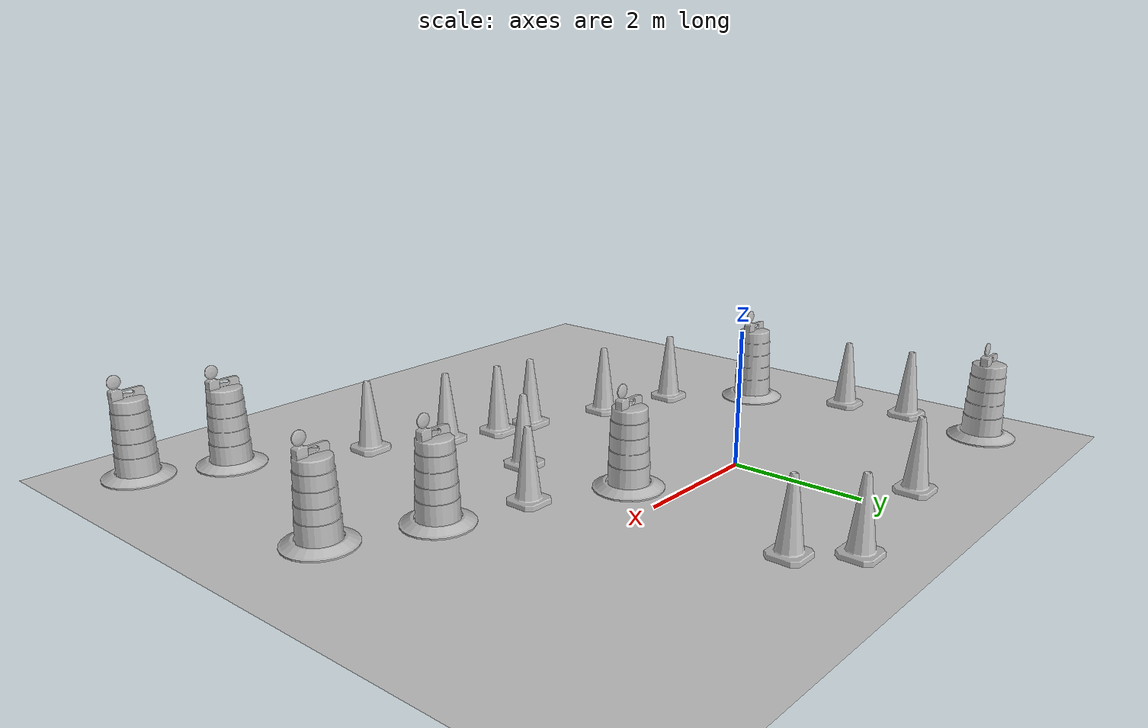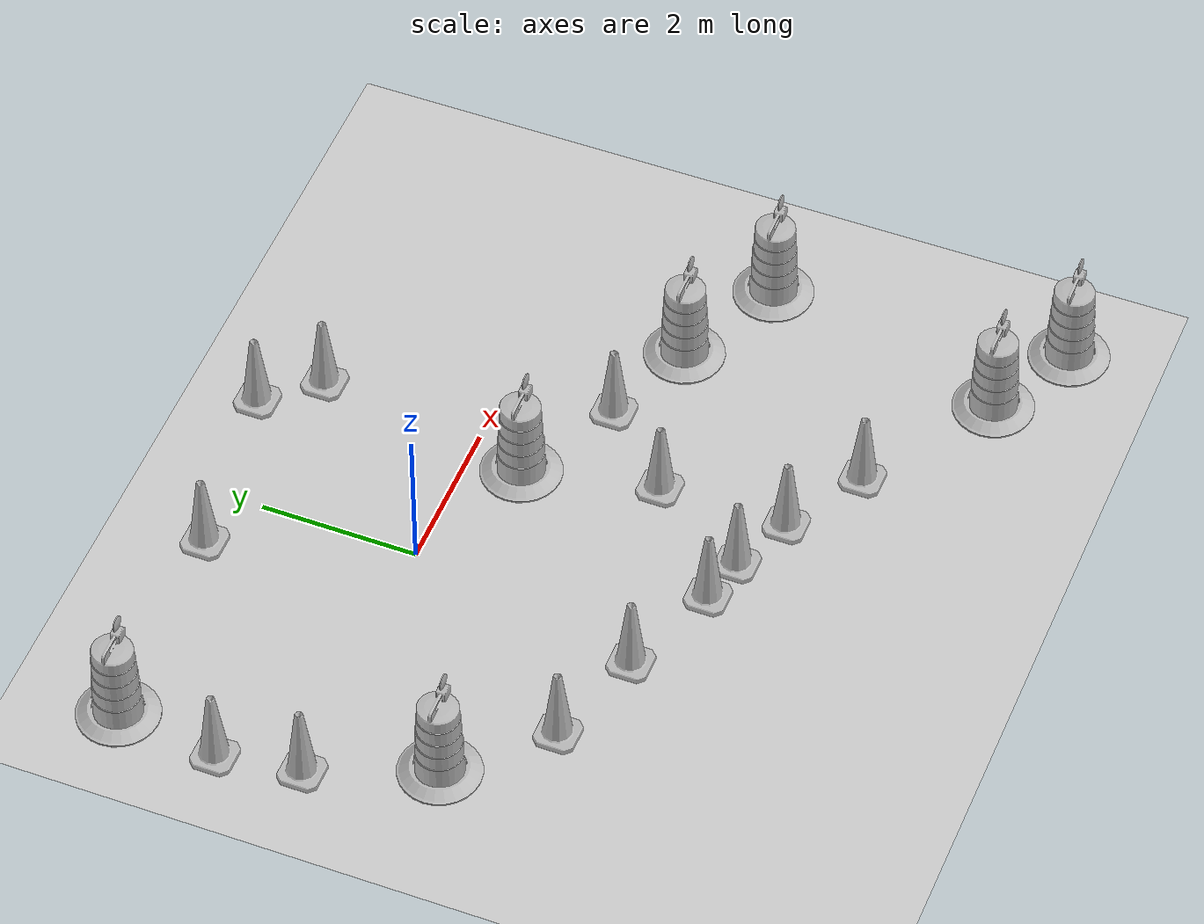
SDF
<sdf version="1.7">
 <world name="default">
  <light name="sun" type="directional">
   <pose>0 0 10 0 -0 0</pose>
   <diffuse>0.8 0.8 0.8 1</diffuse>
   <specular>0.2 0.2 0.2 1</specular>
   <attenuation>
    <range>1000</range>
    <constant>0.9</constant>
    <linear>0.01</linear>
    <quadratic>0.001</quadratic>
   </attenuation>
   <direction>-0.5 0.1 -0.9</direction>
   <spot><inner_angle>0</inner_angle><outer_angle>0</outer_angle><falloff>0</falloff></spot>
  </light>
  <model name="ground_plane">
   <static>1</static>
   <link name="link">
    <collision name="collision">
     <geometry><plane><normal>0 0 1</normal><size>100 100</size></plane></geometry>
     <surface>
      <contact><collide_bitmask>65535</collide_bitmask></contact>
      <friction><ode><mu>100</mu><mu2>50</mu2></ode></friction>
     </surface>
    </collision>
    <visual name="visual">
     <cast_shadows>0</cast_shadows>
     <geometry><plane><normal>0 0 1</normal><size>100 100</size></plane></geometry>
     <material>
      <script><uri>file://media/materials/scripts/gazebo.material</uri><name>Gazebo/Grey</name></script>
     </material>
    </visual>
   </link>
  </model>
  <gravity>0 0 -9.8</gravity>
  <magnetic_field>6e-06 2.3e-05 -4.2e-05</magnetic_field>
  <atmosphere type="adiabatic"/>
  <physics type="ode">
   <max_step_size>0.001</max_step_size>
   <real_time_factor>1</real_time_factor>
   <real_time_update_rate>1000</real_time_update_rate>
  </physics>
  <scene><ambient>0.4 0.4 0.4 1</ambient><background>0.7 0.7 0.7 1</background><shadows>1</shadows></scene>
  <spherical_coordinates>
   <surface_model>EARTH_WGS84</surface_model>
   <latitude_deg>0</latitude_deg>
   <longitude_deg>0</longitude_deg>
   <elevation>0</elevation>
   <heading_deg>0</heading_deg>
  </spherical_coordinates>
  <model name="Construction Barrel">
   <link name="link">
    <inertial>
     <pose>0 0 0.4 0 -0 0</pose>
     <mass>500</mass>
     <inertia><ixx>51.2096</ixx><iyy>51.2096</iyy><izz>25</izz><ixy>0</ixy><ixz>0</ixz><iyz>0</iyz></inertia>
    </inertial>
    <collision name="collision">
     <geometry><mesh><uri>model://construction_barrel/meshes/construction_barrel.dae</uri></mesh></geometry>
    </collision>
    <visual name="visual">
     <geometry><mesh><uri>model://construction_barrel/meshes/construction_barrel.dae</uri></mesh></geometry>
    </visual>
   </link>
   <pose>-3.51393 2.28747 0 0 0 -1.5e-05</pose>
  </model>
  <model name="Construction Cone">
   <link name="link">
    <collision name="collision">
     <geometry>
      <mesh><scale>10 10 10</scale><uri>model://construction_cone/meshes/construction_cone.dae</uri></mesh>
     </geometry>
    </collision>
    <visual name="visual">
     <geometry>
      <mesh><scale>10 10 10</scale><uri>model://construction_cone/meshes/construction_cone.dae</uri></mesh>
     </geometry>
    </visual>
    <inertial>
     <inertia><ixx>1</ixx><ixy>0</ixy><ixz>0</ixz><iyy>1</iyy><iyz>0</iyz><izz>1</izz></inertia>
     <mass>1</mass>
    </inertial>
   </link>
   <pose>-3.53483 -0.065905 -0 0 -0 0</pose>
  </model>
  <model name="Construction Cone_0">
   <link name="link">
    <collision name="collision">
     <geometry>
      <mesh><scale>10 10 10</scale><uri>model://construction_cone/meshes/construction_cone.dae</uri></mesh>
     </geometry>
    </collision>
    <visual name="visual">
     <geometry>
      <mesh><scale>10 10 10</scale><uri>model://construction_cone/meshes/construction_cone.dae</uri></mesh>
     </geometry>
    </visual>
    <inertial>
     <inertia><ixx>1</ixx><ixy>0</ixy><ixz>0</ixz><iyy>1</iyy><iyz>0</iyz><izz>1</izz></inertia>
     <mass>1</mass>
    </inertial>
   </link>
   <pose>0.654772 -3.48865 -5e-06 -4e-06 1e-06 0</pose>
  </model>
  <model name="Construction Cone_1">
   <link name="link">
    <collision name="collision">
     <geometry>
      <mesh><scale>10 10 10</scale><uri>model://construction_cone/meshes/construction_cone.dae</uri></mesh>
     </geometry>
    </collision>
    <visual name="visual">
     <geometry>
      <mesh><scale>10 10 10</scale><uri>model://construction_cone/meshes/construction_cone.dae</uri></mesh>
     </geometry>
    </visual>
    <inertial>
     <inertia><ixx>1</ixx><ixy>0</ixy><ixz>0</ixz><iyy>1</iyy><iyz>0</iyz><izz>1</izz></inertia>
     <mass>1</mass>
    </inertial>
   </link>
   <pose>1.53731 2.75175 -0 0 -0 0</pose>
  </model>
  <model name="Construction Cone_2">
   <link name="link">
    <collision name="collision">
     <geometry>
      <mesh><scale>10 10 10</scale><uri>model://construction_cone/meshes/construction_cone.dae</uri></mesh>
     </geometry>
    </collision>
    <visual name="visual">
     <geometry>
      <mesh><scale>10 10 10</scale><uri>model://construction_cone/meshes/construction_cone.dae</uri></mesh>
     </geometry>
    </visual>
    <inertial>
     <inertia><ixx>1</ixx><ixy>0</ixy><ixz>0</ixz><iyy>1</iyy><iyz>0</iyz><izz>1</izz></inertia>
     <mass>1</mass>
    </inertial>
   </link>
   <pose>-1.92102 -2.60736 -0 0 -1e-06 0</pose>
  </model>
  <model name="Construction Barrel_0">
   <link name="link">
    <inertial>
     <pose>0 0 0.4 0 -0 0</pose>
     <mass>500</mass>
     <inertia><ixx>51.2096</ixx><iyy>51.2096</iyy><izz>25</izz><ixy>0</ixy><ixz>0</ixz><iyz>0</iyz></inertia>
    </inertial>
    <collision name="collision">
     <geometry><mesh><uri>model://construction_barrel/meshes/construction_barrel.dae</uri></mesh></geometry>
    </collision>
    <visual name="visual">
     <geometry><mesh><uri>model://construction_barrel/meshes/construction_barrel.dae</uri></mesh></geometry>
    </visual>
   </link>
   <pose>1.68682 -0.673831 1e-06 2e-06 3e-06 -6e-06</pose>
  </model>
  <model name="Construction Cone_3">
   <link name="link">
    <collision name="collision">
     <geometry>
      <mesh><scale>10 10 10</scale><uri>model://construction_cone/meshes/construction_cone.dae</uri></mesh>
     </geometry>
    </collision>
    <visual name="visual">
     <geometry>
      <mesh><scale>10 10 10</scale><uri>model://construction_cone/meshes/construction_cone.dae</uri></mesh>
     </geometry>
    </visual>
    <inertial>
     <inertia><ixx>1</ixx><ixy>0</ixy><ixz>0</ixz><iyy>1</iyy><iyz>0</iyz><izz>1</izz></inertia>
     <mass>1</mass>
    </inertial>
   </link>
   <pose>-0.759573 2.42239 -0 0 -0 0</pose>
  </model>
  <model name="Construction Cone_4">
   <link name="link">
    <collision name="collision">
     <geometry>
      <mesh><scale>10 10 10</scale><uri>model://construction_cone/meshes/construction_cone.dae</uri></mesh>
     </geometry>
    </collision>
    <visual name="visual">
     <geometry>
      <mesh><scale>10 10 10</scale><uri>model://construction_cone/meshes/construction_cone.dae</uri></mesh>
     </geometry>
    </visual>
    <inertial>
     <inertia><ixx>1</ixx><ixy>0</ixy><ixz>0</ixz><iyy>1</iyy><iyz>0</iyz><izz>1</izz></inertia>
     <mass>1</mass>
    </inertial>
   </link>
   <pose>-0.6228 -3.00851 0 0 -0 0</pose>
  </model>
  <model name="Construction Cone_5">
   <link name="link">
    <collision name="collision">
     <geometry>
      <mesh><scale>10 10 10</scale><uri>model://construction_cone/meshes/construction_cone.dae</uri></mesh>
     </geometry>
    </collision>
    <visual name="visual">
     <geometry>
      <mesh><scale>10 10 10</scale><uri>model://construction_cone/meshes/construction_cone.dae</uri></mesh>
     </geometry>
    </visual>
    <inertial>
     <inertia><ixx>1</ixx><ixy>0</ixy><ixz>0</ixz><iyy>1</iyy><iyz>0</iyz><izz>1</izz></inertia>
     <mass>1</mass>
    </inertial>
   </link>
   <pose>-3.69265 0.971507 0 0 -0 0</pose>
  </model>
  <model name="Construction Barrel_1">
   <link name="link">
    <inertial>
     <pose>0 0 0.4 0 -0 0</pose>
     <mass>500</mass>
     <inertia><ixx>51.2096</ixx><iyy>51.2096</iyy><izz>25</izz><ixy>0</ixy><ixz>0</ixz><iyz>0</iyz></inertia>
    </inertial>
    <collision name="collision">
     <geometry><mesh><uri>model://construction_barrel/meshes/construction_barrel.dae</uri></mesh></geometry>
    </collision>
    <visual name="visual">
     <geometry><mesh><uri>model://construction_barrel/meshes/construction_barrel.dae</uri></mesh></geometry>
    </visual>
   </link>
   <pose>-2.91804 -1.53548 0 0 -0 0</pose>
  </model>
  <model name="Construction Cone_6">
   <link name="link">
    <collision name="collision">
     <geometry>
      <mesh><scale>10 10 10</scale><uri>model://construction_cone/meshes/construction_cone.dae</uri></mesh>
     </geometry>
    </collision>
    <visual name="visual">
     <geometry>
      <mesh><scale>10 10 10</scale><uri>model://construction_cone/meshes/construction_cone.dae</uri></mesh>
     </geometry>
    </visual>
    <inertial>
     <inertia><ixx>1</ixx><ixy>0</ixy><ixz>0</ixz><iyy>1</iyy><iyz>0</iyz><izz>1</izz></inertia>
     <mass>1</mass>
    </inertial>
   </link>
   <pose>1.25967 -3.62662 0 0 -0 0</pose>
  </model>
  <model name="Construction Cone_7">
   <link name="link">
    <collision name="collision">
     <geometry>
      <mesh><scale>10 10 10</scale><uri>model://construction_cone/meshes/construction_cone.dae</uri></mesh>
     </geometry>
    </collision>
    <visual name="visual">
     <geometry>
      <mesh><scale>10 10 10</scale><uri>model://construction_cone/meshes/construction_cone.dae</uri></mesh>
     </geometry>
    </visual>
    <inertial>
     <inertia><ixx>1</ixx><ixy>0</ixy><ixz>0</ixz><iyy>1</iyy><iyz>0</iyz><izz>1</izz></inertia>
     <mass>1</mass>
    </inertial>
   </link>
   <pose>2.10805 2.10173 0 0 -0 0</pose>
  </model>
  <model name="Construction Cone_8">
   <link name="link">
    <collision name="collision">
     <geometry>
      <mesh><scale>10 10 10</scale><uri>model://construction_cone/meshes/construction_cone.dae</uri></mesh>
     </geometry>
    </collision>
    <visual name="visual">
     <geometry>
      <mesh><scale>10 10 10</scale><uri>model://construction_cone/meshes/construction_cone.dae</uri></mesh>
     </geometry>
    </visual>
    <inertial>
     <inertia><ixx>1</ixx><ixy>0</ixy><ixz>0</ixz><iyy>1</iyy><iyz>0</iyz><izz>1</izz></inertia>
     <mass>1</mass>
    </inertial>
   </link>
   <pose>2.04891 -3.96081 0 0 -0 0</pose>
  </model>
  <model name="Construction Cone_9">
   <link name="link">
    <collision name="collision">
     <geometry>
      <mesh><scale>10 10 10</scale><uri>model://construction_cone/meshes/construction_cone.dae</uri></mesh>
     </geometry>
    </collision>
    <visual name="visual">
     <geometry>
      <mesh><scale>10 10 10</scale><uri>model://construction_cone/meshes/construction_cone.dae</uri></mesh>
     </geometry>
    </visual>
    <inertial>
     <inertia><ixx>1</ixx><ixy>0</ixy><ixz>0</ixz><iyy>1</iyy><iyz>0</iyz><izz>1</izz></inertia>
     <mass>1</mass>
    </inertial>
   </link>
   <pose>2.97381 -1.37081 0 0 -0 0</pose>
  </model>
  <model name="Construction Barrel_2">
   <link name="link">
    <inertial>
     <pose>0 0 0.4 0 -0 0</pose>
     <mass>500</mass>
     <inertia><ixx>51.2096</ixx><iyy>51.2096</iyy><izz>25</izz><ixy>0</ixy><ixz>0</ixz><iyz>0</iyz></inertia>
    </inertial>
    <collision name="collision">
     <geometry><mesh><uri>model://construction_barrel/meshes/construction_barrel.dae</uri></mesh></geometry>
    </collision>
    <visual name="visual">
     <geometry><mesh><uri>model://construction_barrel/meshes/construction_barrel.dae</uri></mesh></geometry>
    </visual>
   </link>
   <pose>4.20091 -1.81869 0 0 -0 0</pose>
  </model>
  <model name="Construction Barrel_3">
   <link name="link">
    <inertial>
     <pose>0 0 0.4 0 -0 0</pose>
     <mass>500</mass>
     <inertia><ixx>51.2096</ixx><iyy>51.2096</iyy><izz>25</izz><ixy>0</ixy><ixz>0</ixz><iyz>0</iyz></inertia>
    </inertial>
    <collision name="collision">
     <geometry><mesh><uri>model://construction_barrel/meshes/construction_barrel.dae</uri></mesh></geometry>
    </collision>
    <visual name="visual">
     <geometry><mesh><uri>model://construction_barrel/meshes/construction_barrel.dae</uri></mesh></geometry>
    </visual>
   </link>
   <pose>5.56565 -2.47804 0 0 -0 0</pose>
  </model>
  <model name="Construction Cone_10">
   <link name="link">
    <collision name="collision">
     <geometry>
      <mesh><scale>10 10 10</scale><uri>model://construction_cone/meshes/construction_cone.dae</uri></mesh>
     </geometry>
    </collision>
    <visual name="visual">
     <geometry>
      <mesh><scale>10 10 10</scale><uri>model://construction_cone/meshes/construction_cone.dae</uri></mesh>
     </geometry>
    </visual>
    <inertial>
     <inertia><ixx>1</ixx><ixy>0</ixy><ixz>0</ixz><iyy>1</iyy><iyz>0</iyz><izz>1</izz></inertia>
     <mass>1</mass>
    </inertial>
   </link>
   <pose>3.07641 -4.56079 0 0 -0 0</pose>
  </model>
  <model name="Construction Barrel_4">
   <link name="link">
    <inertial>
     <pose>0 0 0.4 0 -0 0</pose>
     <mass>500</mass>
     <inertia><ixx>51.2096</ixx><iyy>51.2096</iyy><izz>25</izz><ixy>0</ixy><ixz>0</ixz><iyz>0</iyz></inertia>
    </inertial>
    <collision name="collision">
     <geometry><mesh><uri>model://construction_barrel/meshes/construction_barrel.dae</uri></mesh></geometry>
    </collision>
    <visual name="visual">
     <geometry><mesh><uri>model://construction_barrel/meshes/construction_barrel.dae</uri></mesh></geometry>
    </visual>
   </link>
   <pose>4.7768 -5.64463 0 0 -0 0</pose>
  </model>
  <model name="Construction Barrel_5">
   <link name="link">
    <inertial>
     <pose>0 0 0.4 0 -0 0</pose>
     <mass>500</mass>
     <inertia><ixx>51.2096</ixx><iyy>51.2096</iyy><izz>25</izz><ixy>0</ixy><ixz>0</ixz><iyz>0</iyz></inertia>
    </inertial>
    <collision name="collision">
     <geometry><mesh><uri>model://construction_barrel/meshes/construction_barrel.dae</uri></mesh></geometry>
    </collision>
    <visual name="visual">
     <geometry><mesh><uri>model://construction_barrel/meshes/construction_barrel.dae</uri></mesh></geometry>
    </visual>
   </link>
   <pose>5.90827 -6.23792 0 0 -0 0</pose>
  </model>
  <model name="Construction Cone_11">
   <link name="link">
    <collision name="collision">
     <geometry>
      <mesh><scale>10 10 10</scale><uri>model://construction_cone/meshes/construction_cone.dae</uri></mesh>
     </geometry>
    </collision>
    <visual name="visual">
     <geometry>
      <mesh><scale>10 10 10</scale><uri>model://construction_cone/meshes/construction_cone.dae</uri></mesh>
     </geometry>
    </visual>
    <inertial>
     <inertia><ixx>1</ixx><ixy>0</ixy><ixz>0</ixz><iyy>1</iyy><iyz>0</iyz><izz>1</izz></inertia>
     <mass>1</mass>
    </inertial>
   </link>
   <pose>2.03266 -2.34123 0 0 -0 0</pose>
  </model>
 </world>
</sdf>
